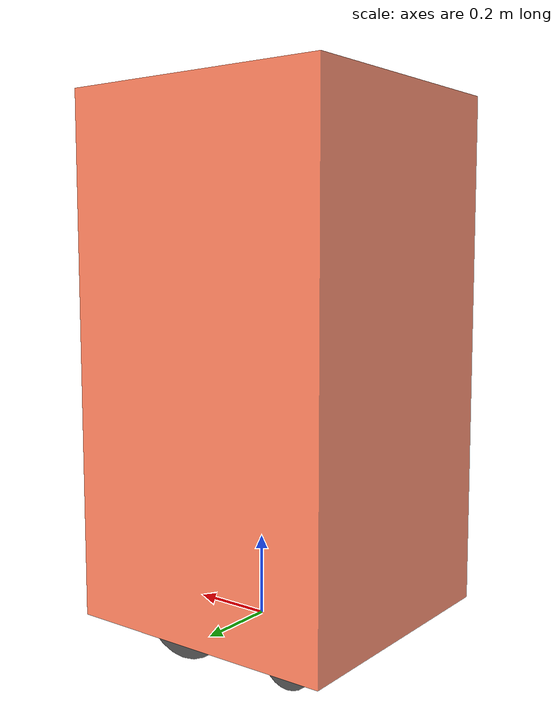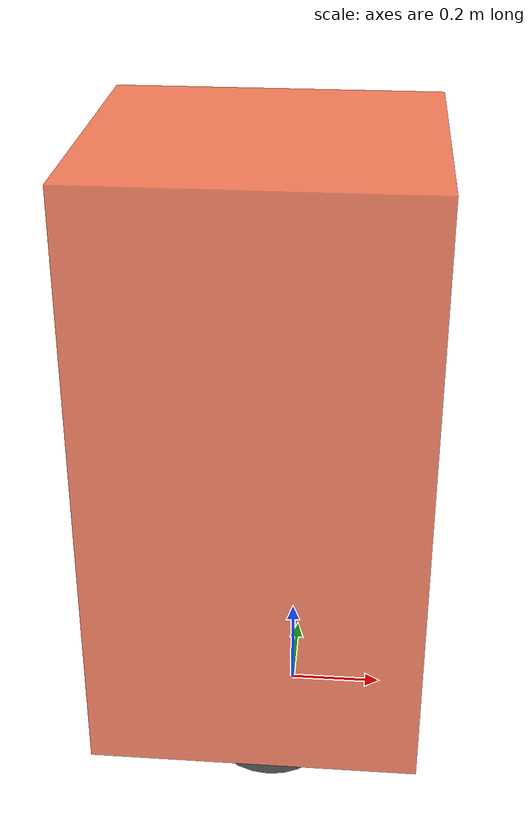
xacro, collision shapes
<?xml version="1.0"?>
<robot name="sucky" xmlns:xacro="http://ros.org/wiki/xacro">

  <xacro:include filename="intertial_macros.xacro"/>

  <!-- Define robot constants -->
  <xacro:property name="chassis_width" value="0.67"/>
  <xacro:property name="chassis_length" value="0.69"/>
  <xacro:property name="chassis_height" value="1.26"/>
  <xacro:property name="chassis_mass" value="40"/>

  <xacro:property name="wheel_radius" value="0.127"/>
  <xacro:property name="wheel_thickness" value="0.038862"/>
  <xacro:property name="wheel_offset_y" value=".287147"/>
  <xacro:property name="wheel_offset_z" value="0.0"/>
  <xacro:property name="wheel_offset_x" value="-0.03"/> <!--Try to minimize this value to compensate for tilting of robot-->
  <xacro:property name="wheel_mass" value=".5"/>

  <xacro:property name="omni_wheel_mass" value=".2"/>
  <xacro:property name="omni_wheel_radius" value="0.0635"/>
  <xacro:property name="omni_wheel_thickness" value="0.04"/>
  <xacro:property name="omni_wheel_offset_z" value="0.0635"/> <!-- (2.5") center of wheel to center of main axle-->
  <xacro:property name="omni_wheel_offset_x" value="0.3146396"/> <!-- (9.474") center of wheel to center of main axle-->
  <xacro:property name="omni_wheel_offset_y" value="0.2752344"/> <!-- (10.836") center of wheel to center of main axle -->

  <!-- chasis bottom point is the back bottom metal frame near the motors -->
  <!-- mass inaccurate, only matters for simulation -->

  <!-- colors for RViz visualization-->
  <material name="orange">
    <color rgba="1 .3 .1 0.7" />
  </material>
  <material name="black">
    <color rgba="0 0 0 0.7" />
  </material>

<!-- base_footprint -->
<link name="base_footprint"/>

<!-- base link -->
<link name="base_link"/>

<joint name="base_footprint_joint" type="fixed">
  <parent link="base_footprint"/>
  <child link="base_link"/>
  <origin xyz="0 0 ${wheel_radius}" rpy="0 0 0"/>
</joint>

  <!-- chassis link -->
  <joint name="chassis_joint" type="fixed">
    <parent link="base_link"/>
    <child link="chassis"/>
    <origin xyz="-.0635 0 -.0953"/>
  </joint>

  <link name="chassis">
    <visual>
      <origin xyz="0 0 0" rpy="0 0 ${pi/2}"/>
      <geometry>
        <mesh filename="file://$(find sucky_bringup)/meshes/sucky_reduced_4mb.stl" scale="0.1 0.1 0.1" />
      </geometry>
      <!-- RViz coloring -->
      <material name="orange"/>
    </visual>
    <collision>
      <origin xyz="0 0 ${chassis_height/2}"/>
      <geometry>
        <box size="${chassis_length} ${chassis_width} ${chassis_height}"/>
      </geometry>
    </collision>
    <xacro:inertial_box mass="${chassis_mass}" x="${chassis_length}" y="${chassis_width}" z="${chassis_height}">
      <origin xyz="0 0 ${chassis_height/2}" rpy="0 0 0"/>
    </xacro:inertial_box>
  </link>

  <gazebo reference="chassis">
    <material>Gazebo/White</material>
  </gazebo>

  <!-- LEFT WHEEL LINK -->
  <joint name="left_wheel_joint" type="continuous"> <!-- change back to continuous-->
      <parent link="base_link"/>
      <child link="left_wheel"/>
      <origin xyz="${wheel_offset_x} ${wheel_offset_y} 0" rpy="0 0 0" />
      <axis xyz="0 1 0"/>
  </joint>

  <link name="left_wheel">
      <visual>
          <origin xyz="0 0 0" rpy="0 0 0"/>
          <geometry>
              <mesh filename="file://$(find sucky_bringup)/meshes/Big_Wheel.stl" scale="0.001 0.001 0.001" />
          </geometry>
          <!-- RViz coloring -->
          <material name="black"/>
      </visual>
      <collision>
          <origin xyz="0 0.019431 0" rpy="${pi/2} 0 0"/>
          <geometry>
              <cylinder radius="${wheel_radius}" length="${wheel_thickness}"/>
          </geometry>
      </collision>
      <xacro:inertial_cylinder mass="${wheel_mass}" length="${wheel_thickness}" radius="${wheel_radius}">
          <origin xyz="0 0.019431 0" rpy="${pi/2} 0 0"/>
      </xacro:inertial_cylinder>
  </link>

  <gazebo reference="left_wheel">
      <material>Gazebo/Black</material>
  </gazebo>

  <!-- RIGHT WHEEL LINK -->
  <joint name="right_wheel_joint" type="continuous"> <!-- change back to continuous-->
      <parent link="base_link"/>
      <child link="right_wheel"/>
      <origin xyz="${wheel_offset_x} ${-wheel_offset_y} 0" rpy="0 0 ${pi}" />
      <axis xyz="0 -1 0"/>
  </joint>

  <link name="right_wheel">
      <visual>
          <geometry>
              <mesh filename="file://$(find sucky_bringup)/meshes/Big_Wheel.stl" scale="0.001 0.001 0.001" />
          </geometry>
          <material name="black"/>
      </visual>
      <collision>
          <origin xyz="0 0.019431 0" rpy="${pi/2} 0 0"/>
          <geometry>
              <cylinder radius="${wheel_radius}" length="${wheel_thickness}"/>
          </geometry>
      </collision>
      <xacro:inertial_cylinder mass="${wheel_mass}" length="${wheel_thickness}" radius="${wheel_radius}">
          <origin xyz="0 0.019431 0" rpy="${pi/2} 0 0"/>
      </xacro:inertial_cylinder>
  </link>

  <gazebo reference="right_wheel">
      <material>Gazebo/Black</material>
  </gazebo>

  <!-- LEFT OMNI WHEEL LINK -->
  <joint name="left_omni_wheel_joint" type="fixed">
      <parent link="base_link"/>
      <child link="left_omni_wheel"/>
      <origin xyz="${-omni_wheel_offset_x} ${omni_wheel_offset_y} ${-omni_wheel_offset_z}" rpy="0 0 0"/>
  </joint>

  <link name="left_omni_wheel">
      <visual>
          <geometry>
              <mesh filename="file://$(find sucky_bringup)/meshes/Small_Wheel.stl" scale="0.001 0.001 0.001" />
          </geometry>
          <material name="black"/>
      </visual>
      <collision>
          <origin xyz="0 0.019431 0" rpy="${pi/2} 0 0"/>
          <geometry>
              <cylinder radius="${omni_wheel_radius}" length="${omni_wheel_thickness}"/>
          </geometry>
      </collision>
  </link>

  <gazebo reference="left_omni_wheel">
      <material>Gazebo/Black</material>
      <mu1 value="0.001"/>
      <mu2 value="0.001"/>
  </gazebo>

  <!-- RIGHT OMNI WHEEL LINK -->
  <joint name="right_omni_wheel_joint" type="fixed">
      <parent link="base_link"/>
      <child link="right_omni_wheel"/>
      <origin xyz="${-omni_wheel_offset_x} ${-omni_wheel_offset_y} ${-omni_wheel_offset_z}" rpy="0 0 0"/>
  </joint>

  <link name="right_omni_wheel">
      <visual>
          <geometry>
              <mesh filename="file://$(find sucky_bringup)/meshes/Small_Wheel.stl" scale="0.001 0.001 0.001" />
          </geometry>
          <material name="black"/>
      </visual>
      <collision>
          <origin xyz="0 0.019431 0" rpy="${pi/2} 0 0"/>
          <geometry>
              <cylinder radius="${omni_wheel_radius}" length="${omni_wheel_thickness}"/>
          </geometry>
      </collision>
  </link>

  <gazebo reference="right_omni_wheel">
      <material>Gazebo/Black</material>
      <mu1 value="0.001"/>
      <mu2 value="0.001"/>
  </gazebo>

</robot>
